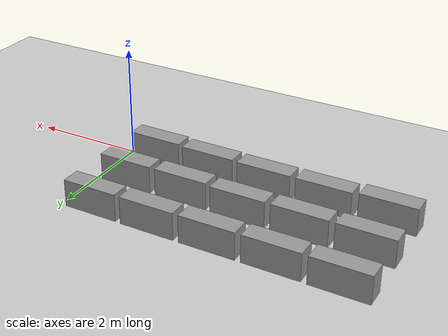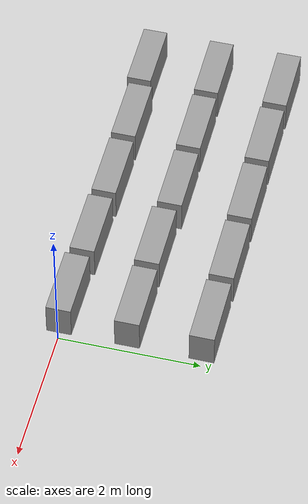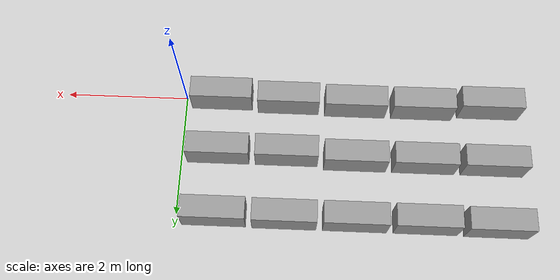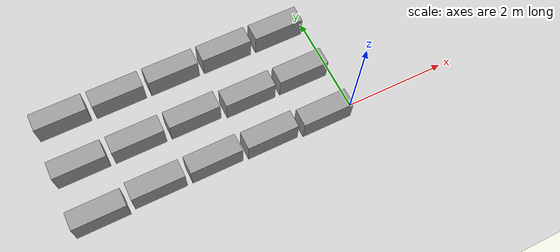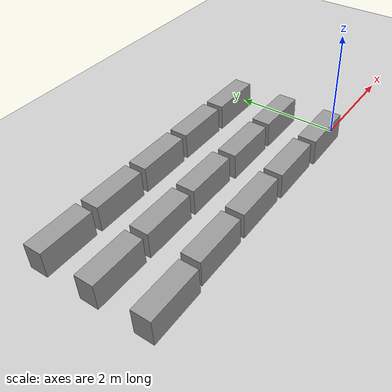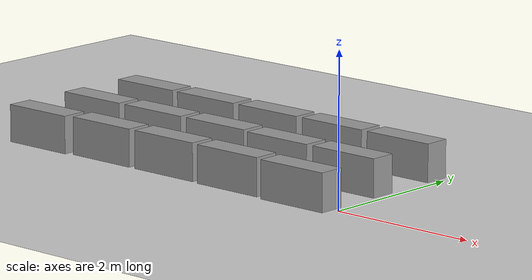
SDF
<sdf version="1.7">
 <world name="default">
  <model name="ground_plane">
   <static>1</static>
   <link name="link">
    <collision name="collision">
     <geometry><plane><normal>0 0 1</normal><size>100 100</size></plane></geometry>
     <surface>
      <contact><collide_bitmask>65535</collide_bitmask></contact>
      <friction><ode><mu>100</mu><mu2>50</mu2></ode></friction>
     </surface>
    </collision>
    <visual name="visual">
     <cast_shadows>0</cast_shadows>
     <geometry><plane><normal>0 0 1</normal><size>100 100</size></plane></geometry>
     <material>
      <script><uri>file://media/materials/scripts/gazebo.material</uri><name>Gazebo/Grey</name></script>
     </material>
    </visual>
   </link>
  </model>
  <model name="obs_solarpanel_raw_0_1">
   <link name="link_0">
    <inertial>
     <mass>1</mass>
     <inertia>
      <ixx>0.166667</ixx>
      <ixy>0</ixy>
      <ixz>0</ixz>
      <iyy>0.166667</iyy>
      <iyz>0</iyz>
      <izz>0.166667</izz>
     </inertia>
    </inertial>
    <visual name="visual">
     <geometry><box><size>1 0.35 0.5</size></box></geometry>
     <material>
      <lighting>1</lighting>
      <script><uri>file://media/materials/scripts/gazebo.material</uri><name>Gazebo/Grey</name></script>
      <shader type="pixel"><normal_map>__default__</normal_map></shader>
      <ambient>0.3 0.3 0.3 1</ambient>
      <diffuse>0.7 0.7 0.7 1</diffuse>
      <specular>0.01 0.01 0.01 1</specular>
      <emissive>0 0 0 1</emissive>
     </material>
    </visual>
    <collision name="collision">
     <geometry><box><size>1 0.32 0.5</size></box></geometry>
     <surface>
      <friction>
       <ode><mu>10</mu><mu2>10</mu2><fdir1>0 0 0</fdir1><slip1>0</slip1><slip2>0</slip2></ode>
       <torsional>
        <coefficient>1</coefficient>
        <patch_radius>0</patch_radius>
        <surface_radius>0</surface_radius>
        <use_patch_radius>1</use_patch_radius>
        <ode><slip>0</slip></ode>
       </torsional>
      </friction>
      <bounce><restitution_coefficient>0</restitution_coefficient><threshold>1e+06</threshold></bounce>
      <contact>
       <collide_without_contact>0</collide_without_contact>
       <collide_without_contact_bitmask>1</collide_without_contact_bitmask>
       <collide_bitmask>1</collide_bitmask>
       <ode>
        <soft_cfm>0</soft_cfm>
        <soft_erp>0.2</soft_erp>
        <kp>1e+13</kp>
        <kd>1</kd>
        <max_vel>0</max_vel>
        <min_depth>0</min_depth>
       </ode>
       <bullet>
        <split_impulse>1</split_impulse>
        <split_impulse_penetration_threshold>-0.01</split_impulse_penetration_threshold>
        <soft_cfm>0</soft_cfm>
        <soft_erp>0.2</soft_erp>
        <kp>1e+13</kp>
        <kd>1</kd>
       </bullet>
      </contact>
     </surface>
    </collision>
   </link>
   <static>1</static>
   <pose>-5 2.01 0.25 0 -0 0</pose>
  </model>
  <model name="obs_solarpanel_raw_0_2">
   <link name="link_0">
    <inertial>
     <mass>1</mass>
     <inertia>
      <ixx>0.166667</ixx>
      <ixy>0</ixy>
      <ixz>0</ixz>
      <iyy>0.166667</iyy>
      <iyz>0</iyz>
      <izz>0.166667</izz>
     </inertia>
    </inertial>
    <visual name="visual">
     <geometry><box><size>1 0.35 0.5</size></box></geometry>
     <material>
      <lighting>1</lighting>
      <script><uri>file://media/materials/scripts/gazebo.material</uri><name>Gazebo/Grey</name></script>
      <shader type="pixel"><normal_map>__default__</normal_map></shader>
      <ambient>0.3 0.3 0.3 1</ambient>
      <diffuse>0.7 0.7 0.7 1</diffuse>
      <specular>0.01 0.01 0.01 1</specular>
      <emissive>0 0 0 1</emissive>
     </material>
    </visual>
    <collision name="collision">
     <geometry><box><size>1 0.32 0.5</size></box></geometry>
     <surface>
      <friction>
       <ode><mu>10</mu><mu2>10</mu2><fdir1>0 0 0</fdir1><slip1>0</slip1><slip2>0</slip2></ode>
       <torsional>
        <coefficient>1</coefficient>
        <patch_radius>0</patch_radius>
        <surface_radius>0</surface_radius>
        <use_patch_radius>1</use_patch_radius>
        <ode><slip>0</slip></ode>
       </torsional>
      </friction>
      <bounce><restitution_coefficient>0</restitution_coefficient><threshold>1e+06</threshold></bounce>
      <contact>
       <collide_without_contact>0</collide_without_contact>
       <collide_without_contact_bitmask>1</collide_without_contact_bitmask>
       <collide_bitmask>1</collide_bitmask>
       <ode>
        <soft_cfm>0</soft_cfm>
        <soft_erp>0.2</soft_erp>
        <kp>1e+13</kp>
        <kd>1</kd>
        <max_vel>0</max_vel>
        <min_depth>0</min_depth>
       </ode>
       <bullet>
        <split_impulse>1</split_impulse>
        <split_impulse_penetration_threshold>-0.01</split_impulse_penetration_threshold>
        <soft_cfm>0</soft_cfm>
        <soft_erp>0.2</soft_erp>
        <kp>1e+13</kp>
        <kd>1</kd>
       </bullet>
      </contact>
     </surface>
    </collision>
   </link>
   <static>1</static>
   <pose>-3.9 2 0.25 0 -0 0</pose>
  </model>
  <model name="obs_solarpanel_raw_0_3">
   <link name="link_0">
    <inertial>
     <mass>1</mass>
     <inertia>
      <ixx>0.166667</ixx>
      <ixy>0</ixy>
      <ixz>0</ixz>
      <iyy>0.166667</iyy>
      <iyz>0</iyz>
      <izz>0.166667</izz>
     </inertia>
    </inertial>
    <visual name="visual">
     <geometry><box><size>1 0.35 0.5</size></box></geometry>
     <material>
      <lighting>1</lighting>
      <script><uri>file://media/materials/scripts/gazebo.material</uri><name>Gazebo/Grey</name></script>
      <shader type="pixel"><normal_map>__default__</normal_map></shader>
      <ambient>0.3 0.3 0.3 1</ambient>
      <diffuse>0.7 0.7 0.7 1</diffuse>
      <specular>0.01 0.01 0.01 1</specular>
      <emissive>0 0 0 1</emissive>
     </material>
    </visual>
    <collision name="collision">
     <geometry><box><size>1 0.32 0.5</size></box></geometry>
     <surface>
      <friction>
       <ode><mu>10</mu><mu2>10</mu2><fdir1>0 0 0</fdir1><slip1>0</slip1><slip2>0</slip2></ode>
       <torsional>
        <coefficient>1</coefficient>
        <patch_radius>0</patch_radius>
        <surface_radius>0</surface_radius>
        <use_patch_radius>1</use_patch_radius>
        <ode><slip>0</slip></ode>
       </torsional>
      </friction>
      <bounce><restitution_coefficient>0</restitution_coefficient><threshold>1e+06</threshold></bounce>
      <contact>
       <collide_without_contact>0</collide_without_contact>
       <collide_without_contact_bitmask>1</collide_without_contact_bitmask>
       <collide_bitmask>1</collide_bitmask>
       <ode>
        <soft_cfm>0</soft_cfm>
        <soft_erp>0.2</soft_erp>
        <kp>1e+13</kp>
        <kd>1</kd>
        <max_vel>0</max_vel>
        <min_depth>0</min_depth>
       </ode>
       <bullet>
        <split_impulse>1</split_impulse>
        <split_impulse_penetration_threshold>-0.01</split_impulse_penetration_threshold>
        <soft_cfm>0</soft_cfm>
        <soft_erp>0.2</soft_erp>
        <kp>1e+13</kp>
        <kd>1</kd>
       </bullet>
      </contact>
     </surface>
    </collision>
   </link>
   <static>1</static>
   <pose>-2.8 2 0.25 0 -0 0</pose>
  </model>
  <model name="obs_solarpanel_raw_0_4">
   <link name="link_0">
    <inertial>
     <mass>1</mass>
     <inertia>
      <ixx>0.166667</ixx>
      <ixy>0</ixy>
      <ixz>0</ixz>
      <iyy>0.166667</iyy>
      <iyz>0</iyz>
      <izz>0.166667</izz>
     </inertia>
    </inertial>
    <visual name="visual">
     <geometry><box><size>1 0.35 0.5</size></box></geometry>
     <material>
      <lighting>1</lighting>
      <script><uri>file://media/materials/scripts/gazebo.material</uri><name>Gazebo/Grey</name></script>
      <shader type="pixel"><normal_map>__default__</normal_map></shader>
      <ambient>0.3 0.3 0.3 1</ambient>
      <diffuse>0.7 0.7 0.7 1</diffuse>
      <specular>0.01 0.01 0.01 1</specular>
      <emissive>0 0 0 1</emissive>
     </material>
    </visual>
    <collision name="collision">
     <geometry><box><size>1 0.32 0.5</size></box></geometry>
     <surface>
      <friction>
       <ode><mu>10</mu><mu2>10</mu2><fdir1>0 0 0</fdir1><slip1>0</slip1><slip2>0</slip2></ode>
       <torsional>
        <coefficient>1</coefficient>
        <patch_radius>0</patch_radius>
        <surface_radius>0</surface_radius>
        <use_patch_radius>1</use_patch_radius>
        <ode><slip>0</slip></ode>
       </torsional>
      </friction>
      <bounce><restitution_coefficient>0</restitution_coefficient><threshold>1e+06</threshold></bounce>
      <contact>
       <collide_without_contact>0</collide_without_contact>
       <collide_without_contact_bitmask>1</collide_without_contact_bitmask>
       <collide_bitmask>1</collide_bitmask>
       <ode>
        <soft_cfm>0</soft_cfm>
        <soft_erp>0.2</soft_erp>
        <kp>1e+13</kp>
        <kd>1</kd>
        <max_vel>0</max_vel>
        <min_depth>0</min_depth>
       </ode>
       <bullet>
        <split_impulse>1</split_impulse>
        <split_impulse_penetration_threshold>-0.01</split_impulse_penetration_threshold>
        <soft_cfm>0</soft_cfm>
        <soft_erp>0.2</soft_erp>
        <kp>1e+13</kp>
        <kd>1</kd>
       </bullet>
      </contact>
     </surface>
    </collision>
   </link>
   <static>1</static>
   <pose>-1.7 2 0.25 0 -0 0</pose>
  </model>
  <model name="obs_solarpanel_raw_0_5">
   <link name="link_0">
    <inertial>
     <mass>1</mass>
     <inertia>
      <ixx>0.166667</ixx>
      <ixy>0</ixy>
      <ixz>0</ixz>
      <iyy>0.166667</iyy>
      <iyz>0</iyz>
      <izz>0.166667</izz>
     </inertia>
    </inertial>
    <visual name="visual">
     <geometry><box><size>1 0.35 0.5</size></box></geometry>
     <material>
      <lighting>1</lighting>
      <script><uri>file://media/materials/scripts/gazebo.material</uri><name>Gazebo/Grey</name></script>
      <shader type="pixel"><normal_map>__default__</normal_map></shader>
      <ambient>0.3 0.3 0.3 1</ambient>
      <diffuse>0.7 0.7 0.7 1</diffuse>
      <specular>0.01 0.01 0.01 1</specular>
      <emissive>0 0 0 1</emissive>
     </material>
    </visual>
    <collision name="collision">
     <geometry><box><size>1 0.32 0.5</size></box></geometry>
     <surface>
      <friction>
       <ode><mu>10</mu><mu2>10</mu2><fdir1>0 0 0</fdir1><slip1>0</slip1><slip2>0</slip2></ode>
       <torsional>
        <coefficient>1</coefficient>
        <patch_radius>0</patch_radius>
        <surface_radius>0</surface_radius>
        <use_patch_radius>1</use_patch_radius>
        <ode><slip>0</slip></ode>
       </torsional>
      </friction>
      <bounce><restitution_coefficient>0</restitution_coefficient><threshold>1e+06</threshold></bounce>
      <contact>
       <collide_without_contact>0</collide_without_contact>
       <collide_without_contact_bitmask>1</collide_without_contact_bitmask>
       <collide_bitmask>1</collide_bitmask>
       <ode>
        <soft_cfm>0</soft_cfm>
        <soft_erp>0.2</soft_erp>
        <kp>1e+13</kp>
        <kd>1</kd>
        <max_vel>0</max_vel>
        <min_depth>0</min_depth>
       </ode>
       <bullet>
        <split_impulse>1</split_impulse>
        <split_impulse_penetration_threshold>-0.01</split_impulse_penetration_threshold>
        <soft_cfm>0</soft_cfm>
        <soft_erp>0.2</soft_erp>
        <kp>1e+13</kp>
        <kd>1</kd>
       </bullet>
      </contact>
     </surface>
    </collision>
   </link>
   <static>1</static>
   <pose>-0.6 1.99 0.25 0 -0 0</pose>
  </model>
  <model name="obs_solarpanel_raw_1_1">
   <link name="link_0">
    <inertial>
     <mass>1</mass>
     <inertia>
      <ixx>0.166667</ixx>
      <ixy>0</ixy>
      <ixz>0</ixz>
      <iyy>0.166667</iyy>
      <iyz>0</iyz>
      <izz>0.166667</izz>
     </inertia>
    </inertial>
    <visual name="visual">
     <geometry><box><size>1 0.35 0.5</size></box></geometry>
     <material>
      <lighting>1</lighting>
      <script><uri>file://media/materials/scripts/gazebo.material</uri><name>Gazebo/Grey</name></script>
      <shader type="pixel"><normal_map>__default__</normal_map></shader>
      <ambient>0.3 0.3 0.3 1</ambient>
      <diffuse>0.7 0.7 0.7 1</diffuse>
      <specular>0.01 0.01 0.01 1</specular>
      <emissive>0 0 0 1</emissive>
     </material>
    </visual>
    <collision name="collision">
     <geometry><box><size>1 0.32 0.5</size></box></geometry>
     <surface>
      <friction>
       <ode><mu>10</mu><mu2>10</mu2><fdir1>0 0 0</fdir1><slip1>0</slip1><slip2>0</slip2></ode>
       <torsional>
        <coefficient>1</coefficient>
        <patch_radius>0</patch_radius>
        <surface_radius>0</surface_radius>
        <use_patch_radius>1</use_patch_radius>
        <ode><slip>0</slip></ode>
       </torsional>
      </friction>
      <bounce><restitution_coefficient>0</restitution_coefficient><threshold>1e+06</threshold></bounce>
      <contact>
       <collide_without_contact>0</collide_without_contact>
       <collide_without_contact_bitmask>1</collide_without_contact_bitmask>
       <collide_bitmask>1</collide_bitmask>
       <ode>
        <soft_cfm>0</soft_cfm>
        <soft_erp>0.2</soft_erp>
        <kp>1e+13</kp>
        <kd>1</kd>
        <max_vel>0</max_vel>
        <min_depth>0</min_depth>
       </ode>
       <bullet>
        <split_impulse>1</split_impulse>
        <split_impulse_penetration_threshold>-0.01</split_impulse_penetration_threshold>
        <soft_cfm>0</soft_cfm>
        <soft_erp>0.2</soft_erp>
        <kp>1e+13</kp>
        <kd>1</kd>
       </bullet>
      </contact>
     </surface>
    </collision>
   </link>
   <static>1</static>
   <pose>-5 1 0.25 0 -0 0</pose>
  </model>
  <model name="obs_solarpanel_raw_1_2">
   <link name="link_0">
    <inertial>
     <mass>1</mass>
     <inertia>
      <ixx>0.166667</ixx>
      <ixy>0</ixy>
      <ixz>0</ixz>
      <iyy>0.166667</iyy>
      <iyz>0</iyz>
      <izz>0.166667</izz>
     </inertia>
    </inertial>
    <visual name="visual">
     <geometry><box><size>1 0.35 0.5</size></box></geometry>
     <material>
      <lighting>1</lighting>
      <script><uri>file://media/materials/scripts/gazebo.material</uri><name>Gazebo/Grey</name></script>
      <shader type="pixel"><normal_map>__default__</normal_map></shader>
      <ambient>0.3 0.3 0.3 1</ambient>
      <diffuse>0.7 0.7 0.7 1</diffuse>
      <specular>0.01 0.01 0.01 1</specular>
      <emissive>0 0 0 1</emissive>
     </material>
    </visual>
    <collision name="collision">
     <geometry><box><size>1 0.32 0.5</size></box></geometry>
     <surface>
      <friction>
       <ode><mu>10</mu><mu2>10</mu2><fdir1>0 0 0</fdir1><slip1>0</slip1><slip2>0</slip2></ode>
       <torsional>
        <coefficient>1</coefficient>
        <patch_radius>0</patch_radius>
        <surface_radius>0</surface_radius>
        <use_patch_radius>1</use_patch_radius>
        <ode><slip>0</slip></ode>
       </torsional>
      </friction>
      <bounce><restitution_coefficient>0</restitution_coefficient><threshold>1e+06</threshold></bounce>
      <contact>
       <collide_without_contact>0</collide_without_contact>
       <collide_without_contact_bitmask>1</collide_without_contact_bitmask>
       <collide_bitmask>1</collide_bitmask>
       <ode>
        <soft_cfm>0</soft_cfm>
        <soft_erp>0.2</soft_erp>
        <kp>1e+13</kp>
        <kd>1</kd>
        <max_vel>0</max_vel>
        <min_depth>0</min_depth>
       </ode>
       <bullet>
        <split_impulse>1</split_impulse>
        <split_impulse_penetration_threshold>-0.01</split_impulse_penetration_threshold>
        <soft_cfm>0</soft_cfm>
        <soft_erp>0.2</soft_erp>
        <kp>1e+13</kp>
        <kd>1</kd>
       </bullet>
      </contact>
     </surface>
    </collision>
   </link>
   <static>1</static>
   <pose>-3.9 1 0.25 0 -0 0</pose>
  </model>
  <model name="obs_solarpanel_raw_1_3">
   <link name="link_0">
    <inertial>
     <mass>1</mass>
     <inertia>
      <ixx>0.166667</ixx>
      <ixy>0</ixy>
      <ixz>0</ixz>
      <iyy>0.166667</iyy>
      <iyz>0</iyz>
      <izz>0.166667</izz>
     </inertia>
    </inertial>
    <visual name="visual">
     <geometry><box><size>1 0.35 0.5</size></box></geometry>
     <material>
      <lighting>1</lighting>
      <script><uri>file://media/materials/scripts/gazebo.material</uri><name>Gazebo/Grey</name></script>
      <shader type="pixel"><normal_map>__default__</normal_map></shader>
      <ambient>0.3 0.3 0.3 1</ambient>
      <diffuse>0.7 0.7 0.7 1</diffuse>
      <specular>0.01 0.01 0.01 1</specular>
      <emissive>0 0 0 1</emissive>
     </material>
    </visual>
    <collision name="collision">
     <geometry><box><size>1 0.32 0.5</size></box></geometry>
     <surface>
      <friction>
       <ode><mu>10</mu><mu2>10</mu2><fdir1>0 0 0</fdir1><slip1>0</slip1><slip2>0</slip2></ode>
       <torsional>
        <coefficient>1</coefficient>
        <patch_radius>0</patch_radius>
        <surface_radius>0</surface_radius>
        <use_patch_radius>1</use_patch_radius>
        <ode><slip>0</slip></ode>
       </torsional>
      </friction>
      <bounce><restitution_coefficient>0</restitution_coefficient><threshold>1e+06</threshold></bounce>
      <contact>
       <collide_without_contact>0</collide_without_contact>
       <collide_without_contact_bitmask>1</collide_without_contact_bitmask>
       <collide_bitmask>1</collide_bitmask>
       <ode>
        <soft_cfm>0</soft_cfm>
        <soft_erp>0.2</soft_erp>
        <kp>1e+13</kp>
        <kd>1</kd>
        <max_vel>0</max_vel>
        <min_depth>0</min_depth>
       </ode>
       <bullet>
        <split_impulse>1</split_impulse>
        <split_impulse_penetration_threshold>-0.01</split_impulse_penetration_threshold>
        <soft_cfm>0</soft_cfm>
        <soft_erp>0.2</soft_erp>
        <kp>1e+13</kp>
        <kd>1</kd>
       </bullet>
      </contact>
     </surface>
    </collision>
   </link>
   <static>1</static>
   <pose>-2.8 1 0.25 0 -0 0</pose>
  </model>
  <model name="obs_solarpanel_raw_1_4">
   <link name="link_0">
    <inertial>
     <mass>1</mass>
     <inertia>
      <ixx>0.166667</ixx>
      <ixy>0</ixy>
      <ixz>0</ixz>
      <iyy>0.166667</iyy>
      <iyz>0</iyz>
      <izz>0.166667</izz>
     </inertia>
    </inertial>
    <visual name="visual">
     <geometry><box><size>1 0.35 0.5</size></box></geometry>
     <material>
      <lighting>1</lighting>
      <script><uri>file://media/materials/scripts/gazebo.material</uri><name>Gazebo/Grey</name></script>
      <shader type="pixel"><normal_map>__default__</normal_map></shader>
      <ambient>0.3 0.3 0.3 1</ambient>
      <diffuse>0.7 0.7 0.7 1</diffuse>
      <specular>0.01 0.01 0.01 1</specular>
      <emissive>0 0 0 1</emissive>
     </material>
    </visual>
    <collision name="collision">
     <geometry><box><size>1 0.32 0.5</size></box></geometry>
     <surface>
      <friction>
       <ode><mu>10</mu><mu2>10</mu2><fdir1>0 0 0</fdir1><slip1>0</slip1><slip2>0</slip2></ode>
       <torsional>
        <coefficient>1</coefficient>
        <patch_radius>0</patch_radius>
        <surface_radius>0</surface_radius>
        <use_patch_radius>1</use_patch_radius>
        <ode><slip>0</slip></ode>
       </torsional>
      </friction>
      <bounce><restitution_coefficient>0</restitution_coefficient><threshold>1e+06</threshold></bounce>
      <contact>
       <collide_without_contact>0</collide_without_contact>
       <collide_without_contact_bitmask>1</collide_without_contact_bitmask>
       <collide_bitmask>1</collide_bitmask>
       <ode>
        <soft_cfm>0</soft_cfm>
        <soft_erp>0.2</soft_erp>
        <kp>1e+13</kp>
        <kd>1</kd>
        <max_vel>0</max_vel>
        <min_depth>0</min_depth>
       </ode>
       <bullet>
        <split_impulse>1</split_impulse>
        <split_impulse_penetration_threshold>-0.01</split_impulse_penetration_threshold>
        <soft_cfm>0</soft_cfm>
        <soft_erp>0.2</soft_erp>
        <kp>1e+13</kp>
        <kd>1</kd>
       </bullet>
      </contact>
     </surface>
    </collision>
   </link>
   <static>1</static>
   <pose>-1.7 0.95 0.25 0 -0 0</pose>
  </model>
  <model name="obs_solarpanel_raw_1_5">
   <link name="link_0">
    <inertial>
     <mass>1</mass>
     <inertia>
      <ixx>0.166667</ixx>
      <ixy>0</ixy>
      <ixz>0</ixz>
      <iyy>0.166667</iyy>
      <iyz>0</iyz>
      <izz>0.166667</izz>
     </inertia>
    </inertial>
    <visual name="visual">
     <geometry><box><size>1 0.35 0.5</size></box></geometry>
     <material>
      <lighting>1</lighting>
      <script><uri>file://media/materials/scripts/gazebo.material</uri><name>Gazebo/Grey</name></script>
      <shader type="pixel"><normal_map>__default__</normal_map></shader>
      <ambient>0.3 0.3 0.3 1</ambient>
      <diffuse>0.7 0.7 0.7 1</diffuse>
      <specular>0.01 0.01 0.01 1</specular>
      <emissive>0 0 0 1</emissive>
     </material>
    </visual>
    <collision name="collision">
     <geometry><box><size>1 0.32 0.5</size></box></geometry>
     <surface>
      <friction>
       <ode><mu>10</mu><mu2>10</mu2><fdir1>0 0 0</fdir1><slip1>0</slip1><slip2>0</slip2></ode>
       <torsional>
        <coefficient>1</coefficient>
        <patch_radius>0</patch_radius>
        <surface_radius>0</surface_radius>
        <use_patch_radius>1</use_patch_radius>
        <ode><slip>0</slip></ode>
       </torsional>
      </friction>
      <bounce><restitution_coefficient>0</restitution_coefficient><threshold>1e+06</threshold></bounce>
      <contact>
       <collide_without_contact>0</collide_without_contact>
       <collide_without_contact_bitmask>1</collide_without_contact_bitmask>
       <collide_bitmask>1</collide_bitmask>
       <ode>
        <soft_cfm>0</soft_cfm>
        <soft_erp>0.2</soft_erp>
        <kp>1e+13</kp>
        <kd>1</kd>
        <max_vel>0</max_vel>
        <min_depth>0</min_depth>
       </ode>
       <bullet>
        <split_impulse>1</split_impulse>
        <split_impulse_penetration_threshold>-0.01</split_impulse_penetration_threshold>
        <soft_cfm>0</soft_cfm>
        <soft_erp>0.2</soft_erp>
        <kp>1e+13</kp>
        <kd>1</kd>
       </bullet>
      </contact>
     </surface>
    </collision>
   </link>
   <static>1</static>
   <pose>-0.6 0.95 0.25 0 -0 0</pose>
  </model>
  <model name="obs_solarpanel_raw_2_1">
   <link name="link_0">
    <inertial>
     <mass>1</mass>
     <inertia>
      <ixx>0.166667</ixx>
      <ixy>0</ixy>
      <ixz>0</ixz>
      <iyy>0.166667</iyy>
      <iyz>0</iyz>
      <izz>0.166667</izz>
     </inertia>
    </inertial>
    <visual name="visual">
     <geometry><box><size>1 0.35 0.5</size></box></geometry>
     <material>
      <lighting>1</lighting>
      <script><uri>file://media/materials/scripts/gazebo.material</uri><name>Gazebo/Grey</name></script>
      <shader type="pixel"><normal_map>__default__</normal_map></shader>
      <ambient>0.3 0.3 0.3 1</ambient>
      <diffuse>0.7 0.7 0.7 1</diffuse>
      <specular>0.01 0.01 0.01 1</specular>
      <emissive>0 0 0 1</emissive>
     </material>
    </visual>
    <collision name="collision">
     <geometry><box><size>1 0.32 0.5</size></box></geometry>
     <surface>
      <friction>
       <ode><mu>10</mu><mu2>10</mu2><fdir1>0 0 0</fdir1><slip1>0</slip1><slip2>0</slip2></ode>
       <torsional>
        <coefficient>1</coefficient>
        <patch_radius>0</patch_radius>
        <surface_radius>0</surface_radius>
        <use_patch_radius>1</use_patch_radius>
        <ode><slip>0</slip></ode>
       </torsional>
      </friction>
      <bounce><restitution_coefficient>0</restitution_coefficient><threshold>1e+06</threshold></bounce>
      <contact>
       <collide_without_contact>0</collide_without_contact>
       <collide_without_contact_bitmask>1</collide_without_contact_bitmask>
       <collide_bitmask>1</collide_bitmask>
       <ode>
        <soft_cfm>0</soft_cfm>
        <soft_erp>0.2</soft_erp>
        <kp>1e+13</kp>
        <kd>1</kd>
        <max_vel>0</max_vel>
        <min_depth>0</min_depth>
       </ode>
       <bullet>
        <split_impulse>1</split_impulse>
        <split_impulse_penetration_threshold>-0.01</split_impulse_penetration_threshold>
        <soft_cfm>0</soft_cfm>
        <soft_erp>0.2</soft_erp>
        <kp>1e+13</kp>
        <kd>1</kd>
       </bullet>
      </contact>
     </surface>
    </collision>
   </link>
   <static>1</static>
   <pose>-5 0 0.25 0 -0 0</pose>
  </model>
  <model name="obs_solarpanel_raw_2_2">
   <link name="link_0">
    <inertial>
     <mass>1</mass>
     <inertia>
      <ixx>0.166667</ixx>
      <ixy>0</ixy>
      <ixz>0</ixz>
      <iyy>0.166667</iyy>
      <iyz>0</iyz>
      <izz>0.166667</izz>
     </inertia>
    </inertial>
    <visual name="visual">
     <geometry><box><size>1 0.35 0.5</size></box></geometry>
     <material>
      <lighting>1</lighting>
      <script><uri>file://media/materials/scripts/gazebo.material</uri><name>Gazebo/Grey</name></script>
      <shader type="pixel"><normal_map>__default__</normal_map></shader>
      <ambient>0.3 0.3 0.3 1</ambient>
      <diffuse>0.7 0.7 0.7 1</diffuse>
      <specular>0.01 0.01 0.01 1</specular>
      <emissive>0 0 0 1</emissive>
     </material>
    </visual>
    <collision name="collision">
     <geometry><box><size>1 0.32 0.5</size></box></geometry>
     <surface>
      <friction>
       <ode><mu>10</mu><mu2>10</mu2><fdir1>0 0 0</fdir1><slip1>0</slip1><slip2>0</slip2></ode>
       <torsional>
        <coefficient>1</coefficient>
        <patch_radius>0</patch_radius>
        <surface_radius>0</surface_radius>
        <use_patch_radius>1</use_patch_radius>
        <ode><slip>0</slip></ode>
       </torsional>
      </friction>
      <bounce><restitution_coefficient>0</restitution_coefficient><threshold>1e+06</threshold></bounce>
      <contact>
       <collide_without_contact>0</collide_without_contact>
       <collide_without_contact_bitmask>1</collide_without_contact_bitmask>
       <collide_bitmask>1</collide_bitmask>
       <ode>
        <soft_cfm>0</soft_cfm>
        <soft_erp>0.2</soft_erp>
        <kp>1e+13</kp>
        <kd>1</kd>
        <max_vel>0</max_vel>
        <min_depth>0</min_depth>
       </ode>
       <bullet>
        <split_impulse>1</split_impulse>
        <split_impulse_penetration_threshold>-0.01</split_impulse_penetration_threshold>
        <soft_cfm>0</soft_cfm>
        <soft_erp>0.2</soft_erp>
        <kp>1e+13</kp>
        <kd>1</kd>
       </bullet>
      </contact>
     </surface>
    </collision>
   </link>
   <static>1</static>
   <pose>-3.9 0.05 0.25 0 -0 0</pose>
  </model>
  <model name="obs_solarpanel_raw_2_3">
   <link name="link_0">
    <inertial>
     <mass>1</mass>
     <inertia>
      <ixx>0.166667</ixx>
      <ixy>0</ixy>
      <ixz>0</ixz>
      <iyy>0.166667</iyy>
      <iyz>0</iyz>
      <izz>0.166667</izz>
     </inertia>
    </inertial>
    <visual name="visual">
     <geometry><box><size>1 0.35 0.5</size></box></geometry>
     <material>
      <lighting>1</lighting>
      <script><uri>file://media/materials/scripts/gazebo.material</uri><name>Gazebo/Grey</name></script>
      <shader type="pixel"><normal_map>__default__</normal_map></shader>
      <ambient>0.3 0.3 0.3 1</ambient>
      <diffuse>0.7 0.7 0.7 1</diffuse>
      <specular>0.01 0.01 0.01 1</specular>
      <emissive>0 0 0 1</emissive>
     </material>
    </visual>
    <collision name="collision">
     <geometry><box><size>1 0.32 0.5</size></box></geometry>
     <surface>
      <friction>
       <ode><mu>10</mu><mu2>10</mu2><fdir1>0 0 0</fdir1><slip1>0</slip1><slip2>0</slip2></ode>
       <torsional>
        <coefficient>1</coefficient>
        <patch_radius>0</patch_radius>
        <surface_radius>0</surface_radius>
        <use_patch_radius>1</use_patch_radius>
        <ode><slip>0</slip></ode>
       </torsional>
      </friction>
      <bounce><restitution_coefficient>0</restitution_coefficient><threshold>1e+06</threshold></bounce>
      <contact>
       <collide_without_contact>0</collide_without_contact>
       <collide_without_contact_bitmask>1</collide_without_contact_bitmask>
       <collide_bitmask>1</collide_bitmask>
       <ode>
        <soft_cfm>0</soft_cfm>
        <soft_erp>0.2</soft_erp>
        <kp>1e+13</kp>
        <kd>1</kd>
        <max_vel>0</max_vel>
        <min_depth>0</min_depth>
       </ode>
       <bullet>
        <split_impulse>1</split_impulse>
        <split_impulse_penetration_threshold>-0.01</split_impulse_penetration_threshold>
        <soft_cfm>0</soft_cfm>
        <soft_erp>0.2</soft_erp>
        <kp>1e+13</kp>
        <kd>1</kd>
       </bullet>
      </contact>
     </surface>
    </collision>
   </link>
   <static>1</static>
   <pose>-2.8 0.05 0.25 0 -0 0</pose>
  </model>
  <model name="obs_solarpanel_raw_2_4">
   <link name="link_0">
    <inertial>
     <mass>1</mass>
     <inertia>
      <ixx>0.166667</ixx>
      <ixy>0</ixy>
      <ixz>0</ixz>
      <iyy>0.166667</iyy>
      <iyz>0</iyz>
      <izz>0.166667</izz>
     </inertia>
    </inertial>
    <visual name="visual">
     <geometry><box><size>1 0.35 0.5</size></box></geometry>
     <material>
      <lighting>1</lighting>
      <script><uri>file://media/materials/scripts/gazebo.material</uri><name>Gazebo/Grey</name></script>
      <shader type="pixel"><normal_map>__default__</normal_map></shader>
      <ambient>0.3 0.3 0.3 1</ambient>
      <diffuse>0.7 0.7 0.7 1</diffuse>
      <specular>0.01 0.01 0.01 1</specular>
      <emissive>0 0 0 1</emissive>
     </material>
    </visual>
    <collision name="collision">
     <geometry><box><size>1 0.32 0.5</size></box></geometry>
     <surface>
      <friction>
       <ode><mu>10</mu><mu2>10</mu2><fdir1>0 0 0</fdir1><slip1>0</slip1><slip2>0</slip2></ode>
       <torsional>
        <coefficient>1</coefficient>
        <patch_radius>0</patch_radius>
        <surface_radius>0</surface_radius>
        <use_patch_radius>1</use_patch_radius>
        <ode><slip>0</slip></ode>
       </torsional>
      </friction>
      <bounce><restitution_coefficient>0</restitution_coefficient><threshold>1e+06</threshold></bounce>
      <contact>
       <collide_without_contact>0</collide_without_contact>
       <collide_without_contact_bitmask>1</collide_without_contact_bitmask>
       <collide_bitmask>1</collide_bitmask>
       <ode>
        <soft_cfm>0</soft_cfm>
        <soft_erp>0.2</soft_erp>
        <kp>1e+13</kp>
        <kd>1</kd>
        <max_vel>0</max_vel>
        <min_depth>0</min_depth>
       </ode>
       <bullet>
        <split_impulse>1</split_impulse>
        <split_impulse_penetration_threshold>-0.01</split_impulse_penetration_threshold>
        <soft_cfm>0</soft_cfm>
        <soft_erp>0.2</soft_erp>
        <kp>1e+13</kp>
        <kd>1</kd>
       </bullet>
      </contact>
     </surface>
    </collision>
   </link>
   <static>1</static>
   <pose>-1.7 0.03 0.25 0 -0 0</pose>
  </model>
  <model name="obs_solarpanel_raw_2_5">
   <link name="link_0">
    <inertial>
     <mass>1</mass>
     <inertia>
      <ixx>0.166667</ixx>
      <ixy>0</ixy>
      <ixz>0</ixz>
      <iyy>0.166667</iyy>
      <iyz>0</iyz>
      <izz>0.166667</izz>
     </inertia>
    </inertial>
    <visual name="visual">
     <geometry><box><size>1 0.35 0.5</size></box></geometry>
     <material>
      <lighting>1</lighting>
      <script><uri>file://media/materials/scripts/gazebo.material</uri><name>Gazebo/Grey</name></script>
      <shader type="pixel"><normal_map>__default__</normal_map></shader>
      <ambient>0.3 0.3 0.3 1</ambient>
      <diffuse>0.7 0.7 0.7 1</diffuse>
      <specular>0.01 0.01 0.01 1</specular>
      <emissive>0 0 0 1</emissive>
     </material>
    </visual>
    <collision name="collision">
     <geometry><box><size>1 0.32 0.5</size></box></geometry>
     <surface>
      <friction>
       <ode><mu>10</mu><mu2>10</mu2><fdir1>0 0 0</fdir1><slip1>0</slip1><slip2>0</slip2></ode>
       <torsional>
        <coefficient>1</coefficient>
        <patch_radius>0</patch_radius>
        <surface_radius>0</surface_radius>
        <use_patch_radius>1</use_patch_radius>
        <ode><slip>0</slip></ode>
       </torsional>
      </friction>
      <bounce><restitution_coefficient>0</restitution_coefficient><threshold>1e+06</threshold></bounce>
      <contact>
       <collide_without_contact>0</collide_without_contact>
       <collide_without_contact_bitmask>1</collide_without_contact_bitmask>
       <collide_bitmask>1</collide_bitmask>
       <ode>
        <soft_cfm>0</soft_cfm>
        <soft_erp>0.2</soft_erp>
        <kp>1e+13</kp>
        <kd>1</kd>
        <max_vel>0</max_vel>
        <min_depth>0</min_depth>
       </ode>
       <bullet>
        <split_impulse>1</split_impulse>
        <split_impulse_penetration_threshold>-0.01</split_impulse_penetration_threshold>
        <soft_cfm>0</soft_cfm>
        <soft_erp>0.2</soft_erp>
        <kp>1e+13</kp>
        <kd>1</kd>
       </bullet>
      </contact>
     </surface>
    </collision>
   </link>
   <static>1</static>
   <pose>-0.6 -0.01 0.25 0 -0 0</pose>
  </model>
 </world>
</sdf>
